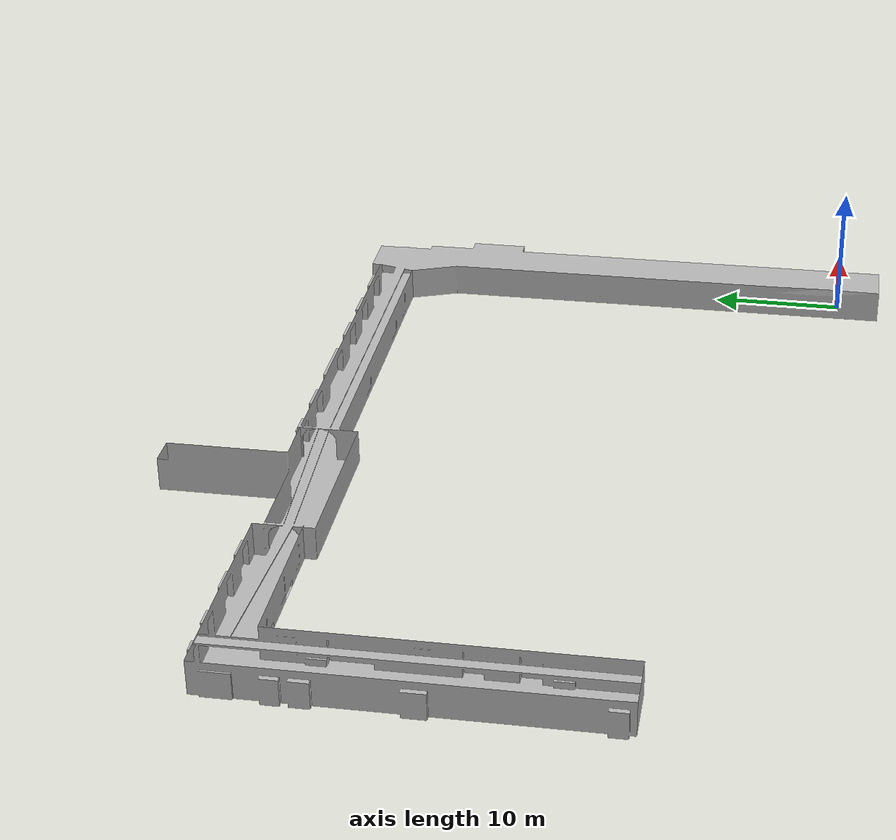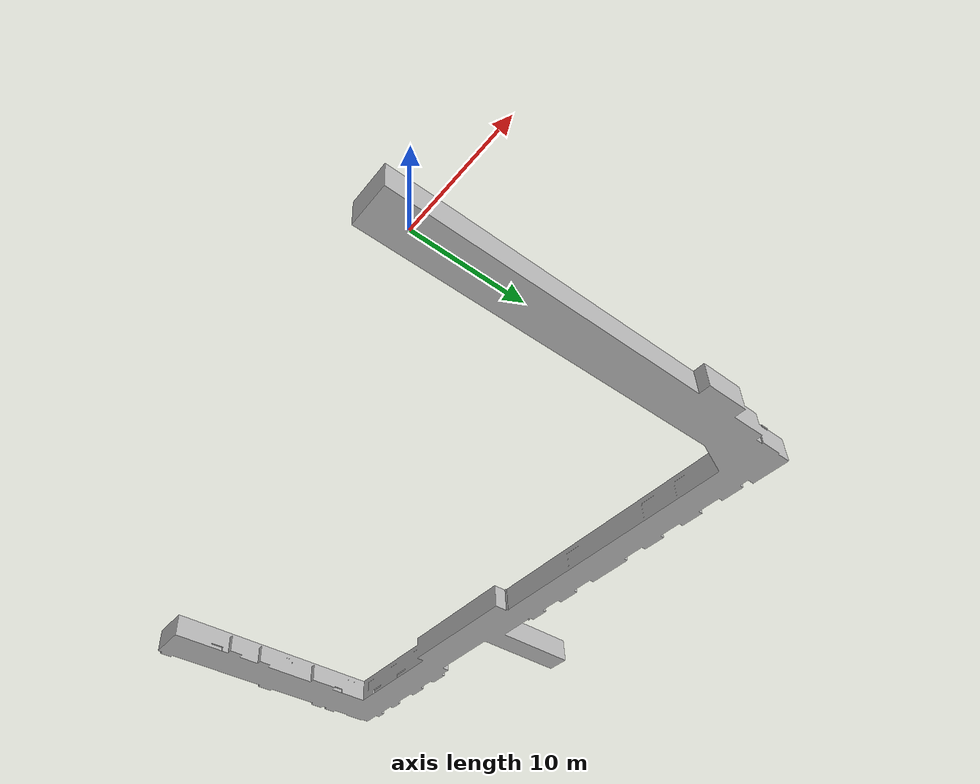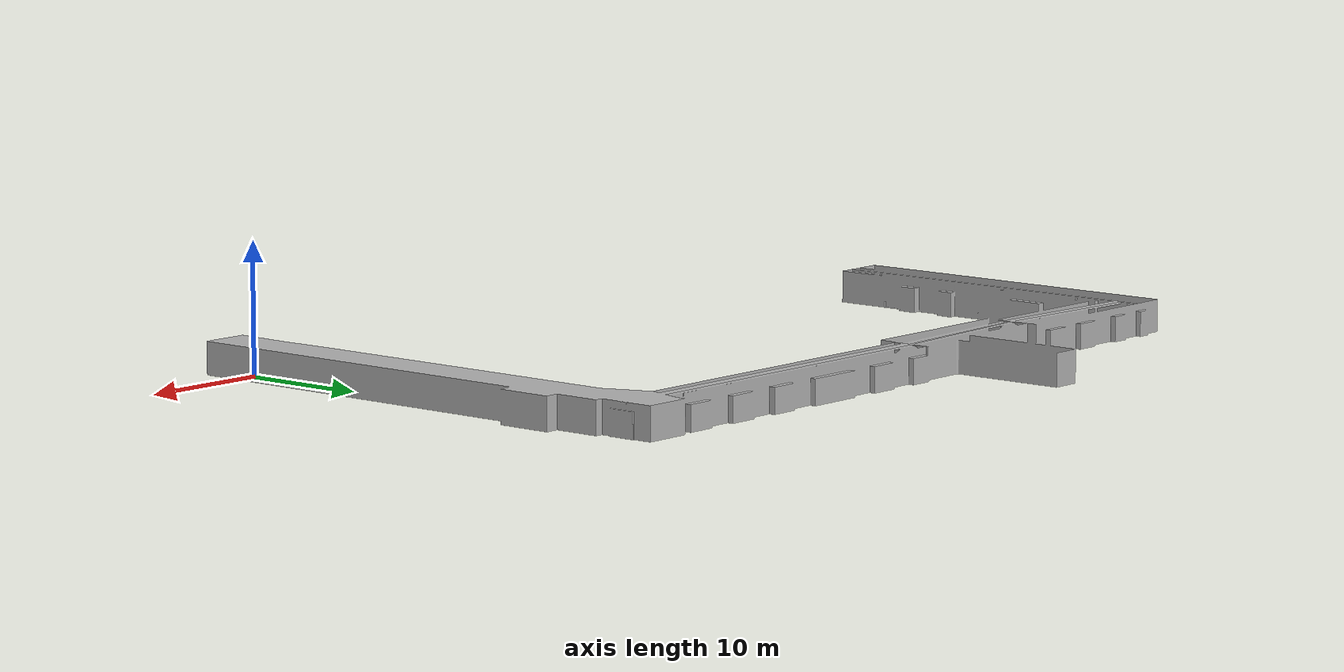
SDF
<?xml version='1.0'?>
<sdf version='1.4'>
  <model name='esat_corridor_v2'>
    <pose>-41 11 0  0 0 3.14</pose>
      <static>1</static>
      <link name='body'>
        <visual name='visual'>
          <geometry>
            <mesh>
              <uri>model://esat_corridor_v2/outline_corridor_doors_floor_wall_finishing.dae</uri>
            </mesh>
          </geometry>
        </visual>
        <collision name='collision'>
          <geometry>
            <mesh>
              <uri>model://esat_corridor_v2/outline_corridor_doors_floor_wall_finishing.dae</uri>
            </mesh>
          </geometry>
          <max_contacts>10000</max_contacts>
          <surface>
            <bounce/>
            <friction>
              <ode/>
            </friction>
            <contact>
              <ode/>
            </contact>
          </surface>
        </collision>
        <velocity_decay>
          <linear>0</linear>
          <angular>0</angular>
        </velocity_decay>
        <self_collide>0</self_collide>
        <kinematic>0</kinematic>
        <gravity>1</gravity>
      </link>
    </model>
</sdf>
